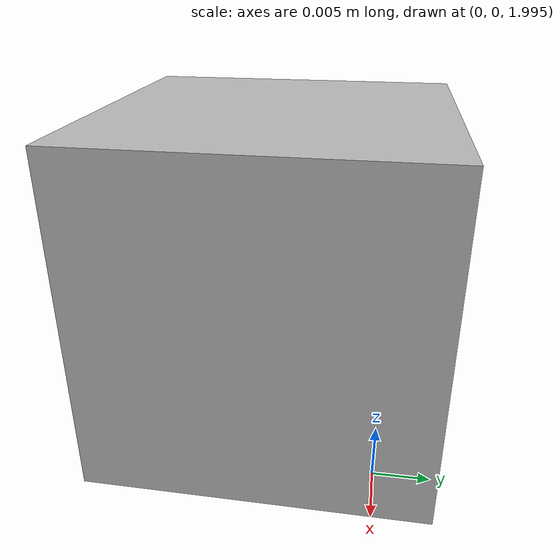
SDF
<?xml version="1.0"?>
<sdf version='1.6'>
  <model name='lidar'>
    <pose>0.0 0.0 2.0 0 0 3.1400000000000001</pose>
    <link name='lidar_link'>
      <pose>0.010000000000000003 0.010000000000000003 0.010000000000000003 0 0 0</pose>
      <inertial>
        <mass>0.10000000000000001</mass>
        <inertia>
          <ixx>0.00016666700000000001</ixx>
          <iyy>0.00016666700000000001</iyy>
          <izz>0.00016666700000000001</izz>
          <ixy>0</ixy>
          <ixz>0</ixz>
          <iyz>0</iyz>
        </inertia>
        <pose>0 0 0 0 0 0</pose>
      </inertial>
      <collision name='collision'>
        <geometry>
          <box>
            <size>0.030000000000000001 0.030000000000000001 0.030000000000000001</size>
          </box>
        </geometry>
        <surface>
          <friction>
            <ode/>
          </friction>
          <bounce/>
          <contact/>
        </surface>
      </collision>
      <visual name='visual'>
        <geometry>
          <box>
            <size>0.030000000000000001 0.030000000000000001 0.030000000000000001</size>
          </box>
        </geometry>
      </visual>
      <sensor name="gpu_lidar" type="gpu_lidar">
        <!-- The sensor pose relative to the link it’s attached to -->
        <pose>0 0 0 0 0 0</pose>
        <!-- Topic name -->
        <topic>scan</topic>
        <!-- Update rate: Ouster often operates around 10Hz -->
        <update_rate>10</update_rate>
        <!-- GPU LIDAR parameters -->
        <lidar>
          <scan>
            <horizontal>
              <samples>720</samples> <!-- Change samples to 1 -->
              <resolution>0.01</resolution>
              <min_angle>-3.14159</min_angle> <!-- Set min and max angle to 0 -->
              <max_angle>3.14159</max_angle>
            </horizontal>
            <vertical>
              <samples>50</samples> <!-- Change samples to 1 -->
              <min_angle>-0.122173</min_angle> <!-- Set min and max angle to 0 -->
              <max_angle>0.907571</max_angle>
              <resolution>0.01</resolution>
            </vertical>
          </scan>
          <range>
            <min>0.1</min>    <!-- Minimum range -->
            <max>250.0</max>  <!-- Similar to Ouster max range -->
            <resolution>0.01</resolution>
          </range>
          <noise>
            <type>none</type>
          </noise>
        </lidar>
      </sensor>

      <enable_wind>false</enable_wind>
    </link>
    <self_collide>false</self_collide>
  </model>
</sdf>
